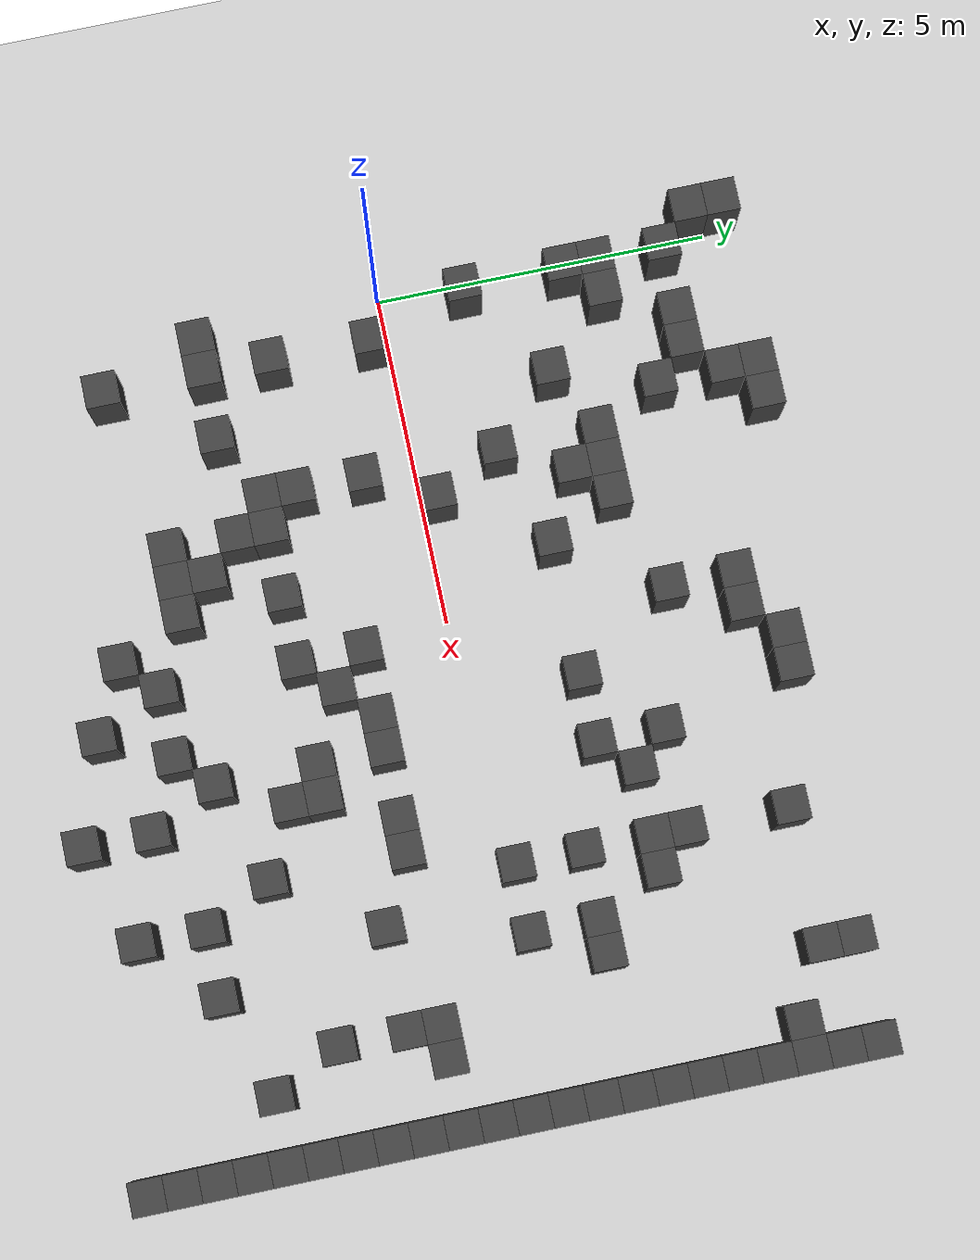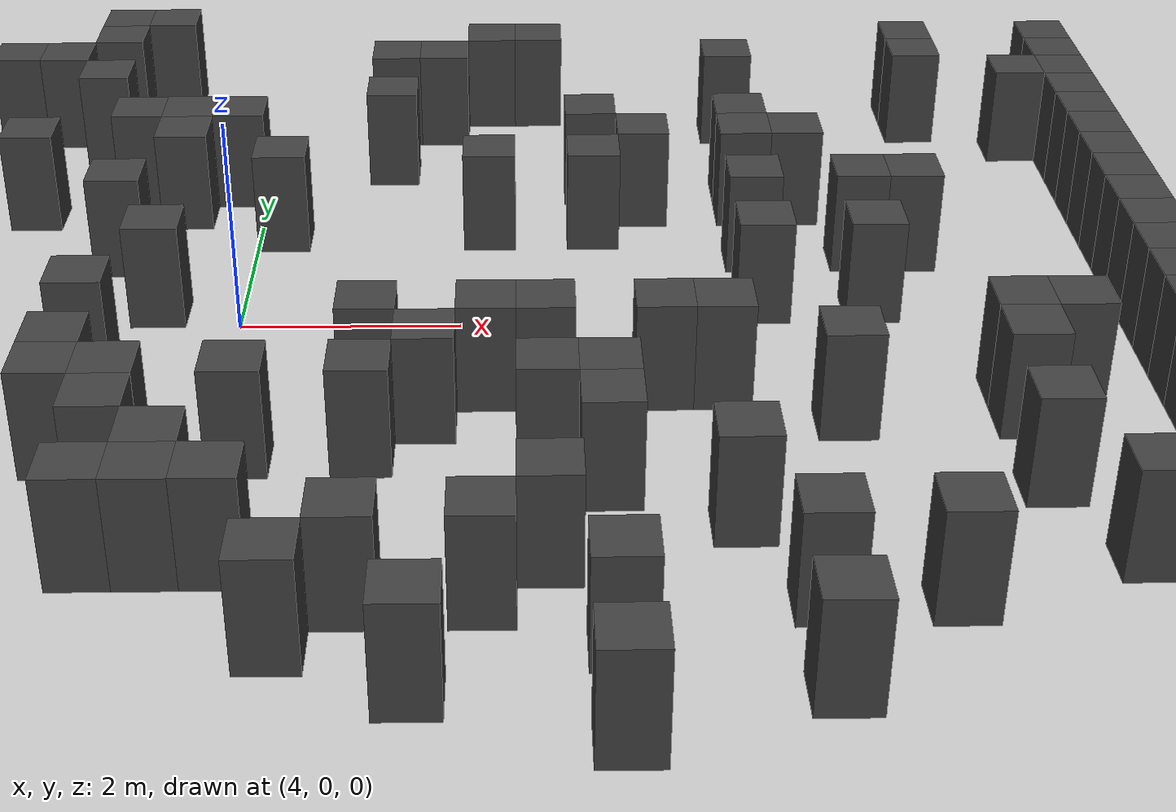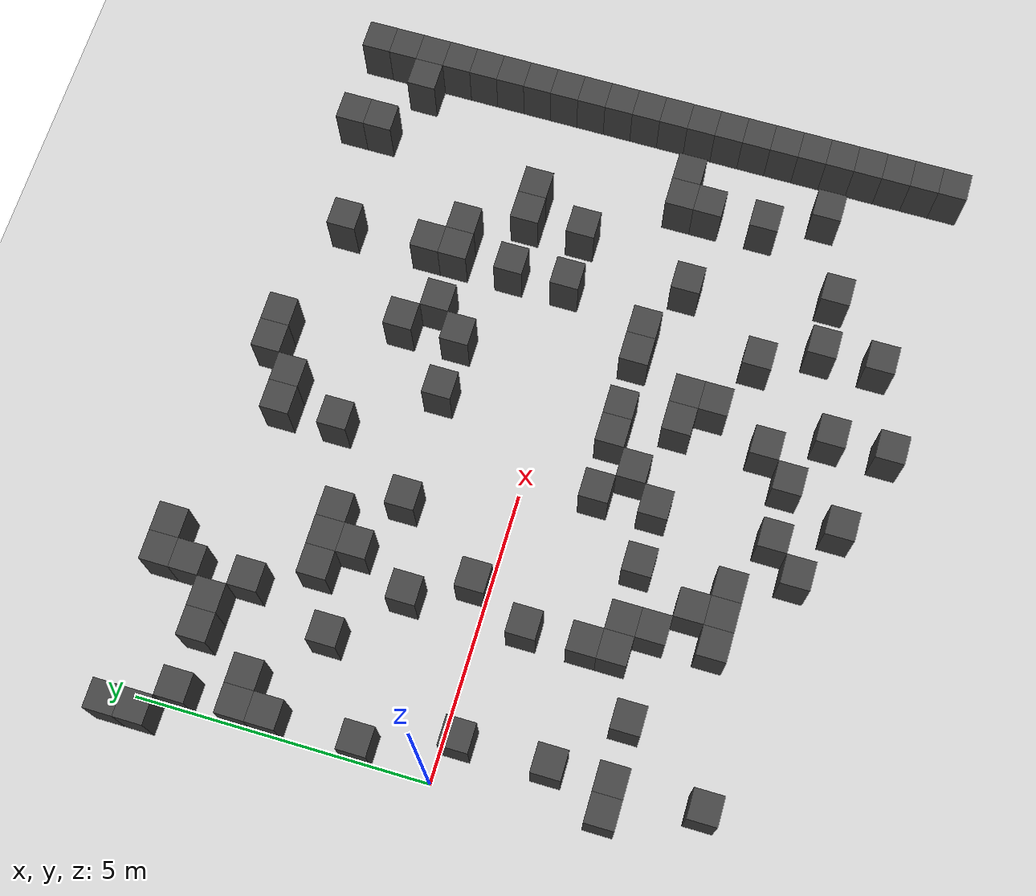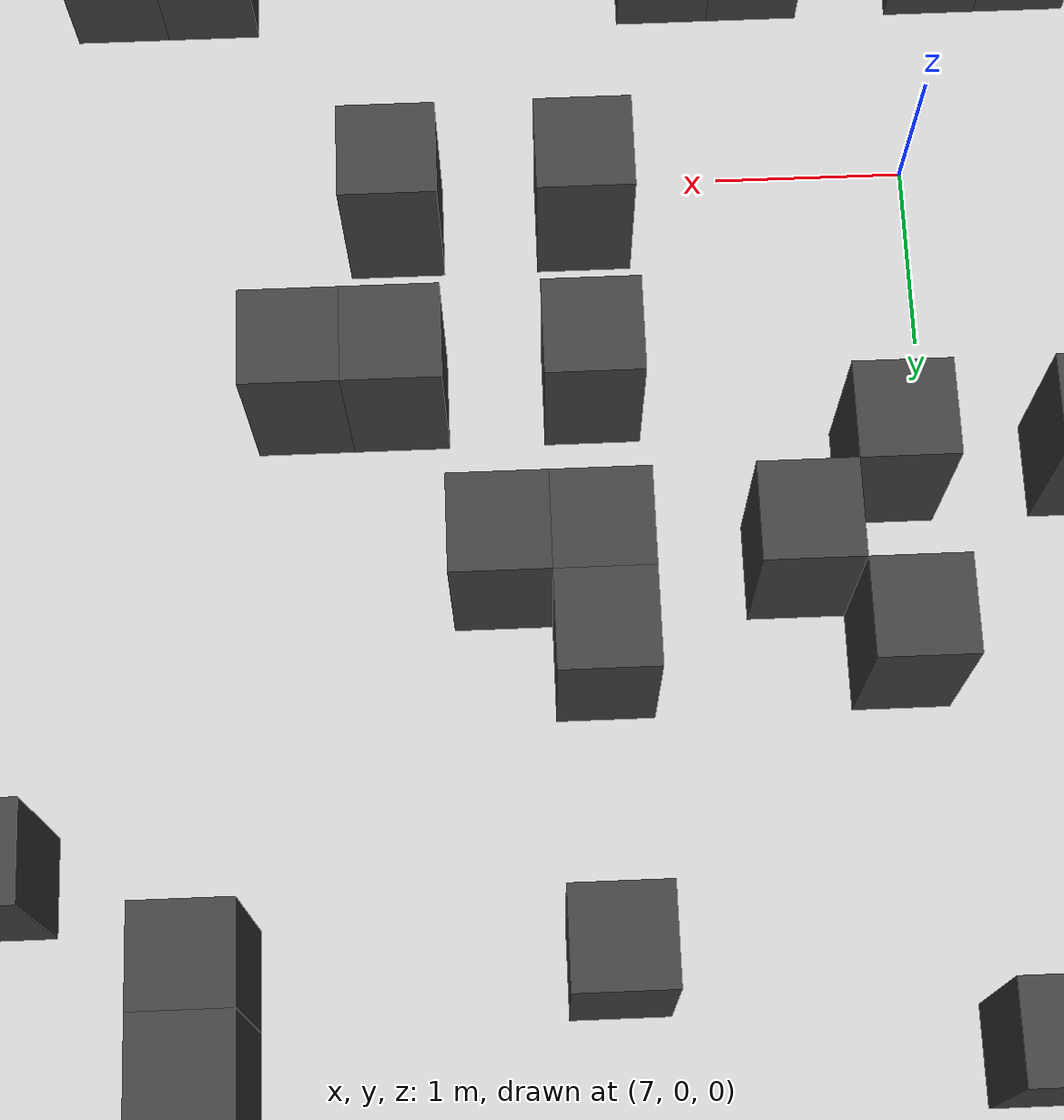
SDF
<sdf version="1.7">
 <world name="map_3955">
  <model name="ground_plane">
   <static>true</static>
   <link name="link">
    <collision name="collision">
     <geometry><plane><normal>0 0 1</normal><size>200 200</size></plane></geometry>
    </collision>
    <visual name="visual">
     <geometry><plane><normal>0 0 1</normal><size>200 200</size></plane></geometry>
     <material><ambient>0.8 0.8 0.8 1</ambient><diffuse>0.8 0.8 0.8 1</diffuse></material>
    </visual>
   </link>
  </model>
  <model name="maze_environment">
   <static>true</static>
   <link name="wall_205">
    <pose>-0.250 5.250 0.500 0 0 0</pose>
    <collision name="col"><geometry><box><size>0.5 0.5 1.0</size></box></geometry></collision>
    <visual name="vis">
     <geometry><box><size>0.5 0.5 1.0</size></box></geometry>
     <material><ambient>0.15 0.15 0.15 1</ambient><diffuse>0.25 0.25 0.25 1</diffuse></material>
    </visual>
   </link>
   <link name="wall_206">
    <pose>2.250 5.250 0.500 0 0 0</pose>
    <collision name="col"><geometry><box><size>0.5 0.5 1.0</size></box></geometry></collision>
    <visual name="vis">
     <geometry><box><size>0.5 0.5 1.0</size></box></geometry>
     <material><ambient>0.15 0.15 0.15 1</ambient><diffuse>0.25 0.25 0.25 1</diffuse></material>
    </visual>
   </link>
   <link name="wall_207">
    <pose>2.750 5.250 0.500 0 0 0</pose>
    <collision name="col"><geometry><box><size>0.5 0.5 1.0</size></box></geometry></collision>
    <visual name="vis">
     <geometry><box><size>0.5 0.5 1.0</size></box></geometry>
     <material><ambient>0.15 0.15 0.15 1</ambient><diffuse>0.25 0.25 0.25 1</diffuse></material>
    </visual>
   </link>
   <link name="wall_222">
    <pose>-0.250 4.750 0.500 0 0 0</pose>
    <collision name="col"><geometry><box><size>0.5 0.5 1.0</size></box></geometry></collision>
    <visual name="vis">
     <geometry><box><size>0.5 0.5 1.0</size></box></geometry>
     <material><ambient>0.15 0.15 0.15 1</ambient><diffuse>0.25 0.25 0.25 1</diffuse></material>
    </visual>
   </link>
   <link name="wall_223">
    <pose>2.250 4.750 0.500 0 0 0</pose>
    <collision name="col"><geometry><box><size>0.5 0.5 1.0</size></box></geometry></collision>
    <visual name="vis">
     <geometry><box><size>0.5 0.5 1.0</size></box></geometry>
     <material><ambient>0.15 0.15 0.15 1</ambient><diffuse>0.25 0.25 0.25 1</diffuse></material>
    </visual>
   </link>
   <link name="wall_224">
    <pose>6.250 4.750 0.500 0 0 0</pose>
    <collision name="col"><geometry><box><size>0.5 0.5 1.0</size></box></geometry></collision>
    <visual name="vis">
     <geometry><box><size>0.5 0.5 1.0</size></box></geometry>
     <material><ambient>0.15 0.15 0.15 1</ambient><diffuse>0.25 0.25 0.25 1</diffuse></material>
    </visual>
   </link>
   <link name="wall_225">
    <pose>6.750 4.750 0.500 0 0 0</pose>
    <collision name="col"><geometry><box><size>0.5 0.5 1.0</size></box></geometry></collision>
    <visual name="vis">
     <geometry><box><size>0.5 0.5 1.0</size></box></geometry>
     <material><ambient>0.15 0.15 0.15 1</ambient><diffuse>0.25 0.25 0.25 1</diffuse></material>
    </visual>
   </link>
   <link name="wall_226">
    <pose>10.750 4.750 0.500 0 0 0</pose>
    <collision name="col"><geometry><box><size>0.5 0.5 1.0</size></box></geometry></collision>
    <visual name="vis">
     <geometry><box><size>0.5 0.5 1.0</size></box></geometry>
     <material><ambient>0.15 0.15 0.15 1</ambient><diffuse>0.25 0.25 0.25 1</diffuse></material>
    </visual>
   </link>
   <link name="wall_227">
    <pose>12.250 4.750 0.500 0 0 0</pose>
    <collision name="col"><geometry><box><size>0.5 0.5 1.0</size></box></geometry></collision>
    <visual name="vis">
     <geometry><box><size>0.5 0.5 1.0</size></box></geometry>
     <material><ambient>0.15 0.15 0.15 1</ambient><diffuse>0.25 0.25 0.25 1</diffuse></material>
    </visual>
   </link>
   <link name="wall_233">
    <pose>0.250 4.250 0.500 0 0 0</pose>
    <collision name="col"><geometry><box><size>0.5 0.5 1.0</size></box></geometry></collision>
    <visual name="vis">
     <geometry><box><size>0.5 0.5 1.0</size></box></geometry>
     <material><ambient>0.15 0.15 0.15 1</ambient><diffuse>0.25 0.25 0.25 1</diffuse></material>
    </visual>
   </link>
   <link name="wall_234">
    <pose>1.250 4.250 0.500 0 0 0</pose>
    <collision name="col"><geometry><box><size>0.5 0.5 1.0</size></box></geometry></collision>
    <visual name="vis">
     <geometry><box><size>0.5 0.5 1.0</size></box></geometry>
     <material><ambient>0.15 0.15 0.15 1</ambient><diffuse>0.25 0.25 0.25 1</diffuse></material>
    </visual>
   </link>
   <link name="wall_235">
    <pose>1.750 4.250 0.500 0 0 0</pose>
    <collision name="col"><geometry><box><size>0.5 0.5 1.0</size></box></geometry></collision>
    <visual name="vis">
     <geometry><box><size>0.5 0.5 1.0</size></box></geometry>
     <material><ambient>0.15 0.15 0.15 1</ambient><diffuse>0.25 0.25 0.25 1</diffuse></material>
    </visual>
   </link>
   <link name="wall_236">
    <pose>5.250 4.250 0.500 0 0 0</pose>
    <collision name="col"><geometry><box><size>0.5 0.5 1.0</size></box></geometry></collision>
    <visual name="vis">
     <geometry><box><size>0.5 0.5 1.0</size></box></geometry>
     <material><ambient>0.15 0.15 0.15 1</ambient><diffuse>0.25 0.25 0.25 1</diffuse></material>
    </visual>
   </link>
   <link name="wall_237">
    <pose>5.750 4.250 0.500 0 0 0</pose>
    <collision name="col"><geometry><box><size>0.5 0.5 1.0</size></box></geometry></collision>
    <visual name="vis">
     <geometry><box><size>0.5 0.5 1.0</size></box></geometry>
     <material><ambient>0.15 0.15 0.15 1</ambient><diffuse>0.25 0.25 0.25 1</diffuse></material>
    </visual>
   </link>
   <link name="wall_238">
    <pose>8.750 4.250 0.500 0 0 0</pose>
    <collision name="col"><geometry><box><size>0.5 0.5 1.0</size></box></geometry></collision>
    <visual name="vis">
     <geometry><box><size>0.5 0.5 1.0</size></box></geometry>
     <material><ambient>0.15 0.15 0.15 1</ambient><diffuse>0.25 0.25 0.25 1</diffuse></material>
    </visual>
   </link>
   <link name="wall_239">
    <pose>10.750 4.250 0.500 0 0 0</pose>
    <collision name="col"><geometry><box><size>0.5 0.5 1.0</size></box></geometry></collision>
    <visual name="vis">
     <geometry><box><size>0.5 0.5 1.0</size></box></geometry>
     <material><ambient>0.15 0.15 0.15 1</ambient><diffuse>0.25 0.25 0.25 1</diffuse></material>
    </visual>
   </link>
   <link name="wall_240">
    <pose>12.250 4.250 0.500 0 0 0</pose>
    <collision name="col"><geometry><box><size>0.5 0.5 1.0</size></box></geometry></collision>
    <visual name="vis">
     <geometry><box><size>0.5 0.5 1.0</size></box></geometry>
     <material><ambient>0.15 0.15 0.15 1</ambient><diffuse>0.25 0.25 0.25 1</diffuse></material>
    </visual>
   </link>
   <link name="wall_250">
    <pose>2.250 3.750 0.500 0 0 0</pose>
    <collision name="col"><geometry><box><size>0.5 0.5 1.0</size></box></geometry></collision>
    <visual name="vis">
     <geometry><box><size>0.5 0.5 1.0</size></box></geometry>
     <material><ambient>0.15 0.15 0.15 1</ambient><diffuse>0.25 0.25 0.25 1</diffuse></material>
    </visual>
   </link>
   <link name="wall_251">
    <pose>11.750 3.750 0.500 0 0 0</pose>
    <collision name="col"><geometry><box><size>0.5 0.5 1.0</size></box></geometry></collision>
    <visual name="vis">
     <geometry><box><size>0.5 0.5 1.0</size></box></geometry>
     <material><ambient>0.15 0.15 0.15 1</ambient><diffuse>0.25 0.25 0.25 1</diffuse></material>
    </visual>
   </link>
   <link name="wall_252">
    <pose>12.250 3.750 0.500 0 0 0</pose>
    <collision name="col"><geometry><box><size>0.5 0.5 1.0</size></box></geometry></collision>
    <visual name="vis">
     <geometry><box><size>0.5 0.5 1.0</size></box></geometry>
     <material><ambient>0.15 0.15 0.15 1</ambient><diffuse>0.25 0.25 0.25 1</diffuse></material>
    </visual>
   </link>
   <link name="wall_260">
    <pose>0.250 3.250 0.500 0 0 0</pose>
    <collision name="col"><geometry><box><size>0.5 0.5 1.0</size></box></geometry></collision>
    <visual name="vis">
     <geometry><box><size>0.5 0.5 1.0</size></box></geometry>
     <material><ambient>0.15 0.15 0.15 1</ambient><diffuse>0.25 0.25 0.25 1</diffuse></material>
    </visual>
   </link>
   <link name="wall_261">
    <pose>0.750 3.250 0.500 0 0 0</pose>
    <collision name="col"><geometry><box><size>0.5 0.5 1.0</size></box></geometry></collision>
    <visual name="vis">
     <geometry><box><size>0.5 0.5 1.0</size></box></geometry>
     <material><ambient>0.15 0.15 0.15 1</ambient><diffuse>0.25 0.25 0.25 1</diffuse></material>
    </visual>
   </link>
   <link name="wall_262">
    <pose>5.250 3.250 0.500 0 0 0</pose>
    <collision name="col"><geometry><box><size>0.5 0.5 1.0</size></box></geometry></collision>
    <visual name="vis">
     <geometry><box><size>0.5 0.5 1.0</size></box></geometry>
     <material><ambient>0.15 0.15 0.15 1</ambient><diffuse>0.25 0.25 0.25 1</diffuse></material>
    </visual>
   </link>
   <link name="wall_263">
    <pose>12.250 3.250 0.500 0 0 0</pose>
    <collision name="col"><geometry><box><size>0.5 0.5 1.0</size></box></geometry></collision>
    <visual name="vis">
     <geometry><box><size>0.5 0.5 1.0</size></box></geometry>
     <material><ambient>0.15 0.15 0.15 1</ambient><diffuse>0.25 0.25 0.25 1</diffuse></material>
    </visual>
   </link>
   <link name="wall_272">
    <pose>0.250 2.750 0.500 0 0 0</pose>
    <collision name="col"><geometry><box><size>0.5 0.5 1.0</size></box></geometry></collision>
    <visual name="vis">
     <geometry><box><size>0.5 0.5 1.0</size></box></geometry>
     <material><ambient>0.15 0.15 0.15 1</ambient><diffuse>0.25 0.25 0.25 1</diffuse></material>
    </visual>
   </link>
   <link name="wall_273">
    <pose>2.750 2.750 0.500 0 0 0</pose>
    <collision name="col"><geometry><box><size>0.5 0.5 1.0</size></box></geometry></collision>
    <visual name="vis">
     <geometry><box><size>0.5 0.5 1.0</size></box></geometry>
     <material><ambient>0.15 0.15 0.15 1</ambient><diffuse>0.25 0.25 0.25 1</diffuse></material>
    </visual>
   </link>
   <link name="wall_274">
    <pose>3.250 2.750 0.500 0 0 0</pose>
    <collision name="col"><geometry><box><size>0.5 0.5 1.0</size></box></geometry></collision>
    <visual name="vis">
     <geometry><box><size>0.5 0.5 1.0</size></box></geometry>
     <material><ambient>0.15 0.15 0.15 1</ambient><diffuse>0.25 0.25 0.25 1</diffuse></material>
    </visual>
   </link>
   <link name="wall_275">
    <pose>3.750 2.750 0.500 0 0 0</pose>
    <collision name="col"><geometry><box><size>0.5 0.5 1.0</size></box></geometry></collision>
    <visual name="vis">
     <geometry><box><size>0.5 0.5 1.0</size></box></geometry>
     <material><ambient>0.15 0.15 0.15 1</ambient><diffuse>0.25 0.25 0.25 1</diffuse></material>
    </visual>
   </link>
   <link name="wall_276">
    <pose>7.250 2.750 0.500 0 0 0</pose>
    <collision name="col"><geometry><box><size>0.5 0.5 1.0</size></box></geometry></collision>
    <visual name="vis">
     <geometry><box><size>0.5 0.5 1.0</size></box></geometry>
     <material><ambient>0.15 0.15 0.15 1</ambient><diffuse>0.25 0.25 0.25 1</diffuse></material>
    </visual>
   </link>
   <link name="wall_277">
    <pose>8.750 2.750 0.500 0 0 0</pose>
    <collision name="col"><geometry><box><size>0.5 0.5 1.0</size></box></geometry></collision>
    <visual name="vis">
     <geometry><box><size>0.5 0.5 1.0</size></box></geometry>
     <material><ambient>0.15 0.15 0.15 1</ambient><diffuse>0.25 0.25 0.25 1</diffuse></material>
    </visual>
   </link>
   <link name="wall_278">
    <pose>12.250 2.750 0.500 0 0 0</pose>
    <collision name="col"><geometry><box><size>0.5 0.5 1.0</size></box></geometry></collision>
    <visual name="vis">
     <geometry><box><size>0.5 0.5 1.0</size></box></geometry>
     <material><ambient>0.15 0.15 0.15 1</ambient><diffuse>0.25 0.25 0.25 1</diffuse></material>
    </visual>
   </link>
   <link name="wall_284">
    <pose>1.750 2.250 0.500 0 0 0</pose>
    <collision name="col"><geometry><box><size>0.5 0.5 1.0</size></box></geometry></collision>
    <visual name="vis">
     <geometry><box><size>0.5 0.5 1.0</size></box></geometry>
     <material><ambient>0.15 0.15 0.15 1</ambient><diffuse>0.25 0.25 0.25 1</diffuse></material>
    </visual>
   </link>
   <link name="wall_285">
    <pose>3.250 2.250 0.500 0 0 0</pose>
    <collision name="col"><geometry><box><size>0.5 0.5 1.0</size></box></geometry></collision>
    <visual name="vis">
     <geometry><box><size>0.5 0.5 1.0</size></box></geometry>
     <material><ambient>0.15 0.15 0.15 1</ambient><diffuse>0.25 0.25 0.25 1</diffuse></material>
    </visual>
   </link>
   <link name="wall_286">
    <pose>7.750 2.250 0.500 0 0 0</pose>
    <collision name="col"><geometry><box><size>0.5 0.5 1.0</size></box></geometry></collision>
    <visual name="vis">
     <geometry><box><size>0.5 0.5 1.0</size></box></geometry>
     <material><ambient>0.15 0.15 0.15 1</ambient><diffuse>0.25 0.25 0.25 1</diffuse></material>
    </visual>
   </link>
   <link name="wall_287">
    <pose>8.750 2.250 0.500 0 0 0</pose>
    <collision name="col"><geometry><box><size>0.5 0.5 1.0</size></box></geometry></collision>
    <visual name="vis">
     <geometry><box><size>0.5 0.5 1.0</size></box></geometry>
     <material><ambient>0.15 0.15 0.15 1</ambient><diffuse>0.25 0.25 0.25 1</diffuse></material>
    </visual>
   </link>
   <link name="wall_288">
    <pose>9.250 2.250 0.500 0 0 0</pose>
    <collision name="col"><geometry><box><size>0.5 0.5 1.0</size></box></geometry></collision>
    <visual name="vis">
     <geometry><box><size>0.5 0.5 1.0</size></box></geometry>
     <material><ambient>0.15 0.15 0.15 1</ambient><diffuse>0.25 0.25 0.25 1</diffuse></material>
    </visual>
   </link>
   <link name="wall_289">
    <pose>12.250 2.250 0.500 0 0 0</pose>
    <collision name="col"><geometry><box><size>0.5 0.5 1.0</size></box></geometry></collision>
    <visual name="vis">
     <geometry><box><size>0.5 0.5 1.0</size></box></geometry>
     <material><ambient>0.15 0.15 0.15 1</ambient><diffuse>0.25 0.25 0.25 1</diffuse></material>
    </visual>
   </link>
   <link name="wall_293">
    <pose>4.250 1.750 0.500 0 0 0</pose>
    <collision name="col"><geometry><box><size>0.5 0.5 1.0</size></box></geometry></collision>
    <visual name="vis">
     <geometry><box><size>0.5 0.5 1.0</size></box></geometry>
     <material><ambient>0.15 0.15 0.15 1</ambient><diffuse>0.25 0.25 0.25 1</diffuse></material>
    </visual>
   </link>
   <link name="wall_294">
    <pose>6.250 1.750 0.500 0 0 0</pose>
    <collision name="col"><geometry><box><size>0.5 0.5 1.0</size></box></geometry></collision>
    <visual name="vis">
     <geometry><box><size>0.5 0.5 1.0</size></box></geometry>
     <material><ambient>0.15 0.15 0.15 1</ambient><diffuse>0.25 0.25 0.25 1</diffuse></material>
    </visual>
   </link>
   <link name="wall_295">
    <pose>7.250 1.750 0.500 0 0 0</pose>
    <collision name="col"><geometry><box><size>0.5 0.5 1.0</size></box></geometry></collision>
    <visual name="vis">
     <geometry><box><size>0.5 0.5 1.0</size></box></geometry>
     <material><ambient>0.15 0.15 0.15 1</ambient><diffuse>0.25 0.25 0.25 1</diffuse></material>
    </visual>
   </link>
   <link name="wall_296">
    <pose>12.250 1.750 0.500 0 0 0</pose>
    <collision name="col"><geometry><box><size>0.5 0.5 1.0</size></box></geometry></collision>
    <visual name="vis">
     <geometry><box><size>0.5 0.5 1.0</size></box></geometry>
     <material><ambient>0.15 0.15 0.15 1</ambient><diffuse>0.25 0.25 0.25 1</diffuse></material>
    </visual>
   </link>
   <link name="wall_300">
    <pose>0.250 1.250 0.500 0 0 0</pose>
    <collision name="col"><geometry><box><size>0.5 0.5 1.0</size></box></geometry></collision>
    <visual name="vis">
     <geometry><box><size>0.5 0.5 1.0</size></box></geometry>
     <material><ambient>0.15 0.15 0.15 1</ambient><diffuse>0.25 0.25 0.25 1</diffuse></material>
    </visual>
   </link>
   <link name="wall_301">
    <pose>2.750 1.250 0.500 0 0 0</pose>
    <collision name="col"><geometry><box><size>0.5 0.5 1.0</size></box></geometry></collision>
    <visual name="vis">
     <geometry><box><size>0.5 0.5 1.0</size></box></geometry>
     <material><ambient>0.15 0.15 0.15 1</ambient><diffuse>0.25 0.25 0.25 1</diffuse></material>
    </visual>
   </link>
   <link name="wall_302">
    <pose>8.750 1.250 0.500 0 0 0</pose>
    <collision name="col"><geometry><box><size>0.5 0.5 1.0</size></box></geometry></collision>
    <visual name="vis">
     <geometry><box><size>0.5 0.5 1.0</size></box></geometry>
     <material><ambient>0.15 0.15 0.15 1</ambient><diffuse>0.25 0.25 0.25 1</diffuse></material>
    </visual>
   </link>
   <link name="wall_303">
    <pose>9.750 1.250 0.500 0 0 0</pose>
    <collision name="col"><geometry><box><size>0.5 0.5 1.0</size></box></geometry></collision>
    <visual name="vis">
     <geometry><box><size>0.5 0.5 1.0</size></box></geometry>
     <material><ambient>0.15 0.15 0.15 1</ambient><diffuse>0.25 0.25 0.25 1</diffuse></material>
    </visual>
   </link>
   <link name="wall_304">
    <pose>10.250 1.250 0.500 0 0 0</pose>
    <collision name="col"><geometry><box><size>0.5 0.5 1.0</size></box></geometry></collision>
    <visual name="vis">
     <geometry><box><size>0.5 0.5 1.0</size></box></geometry>
     <material><ambient>0.15 0.15 0.15 1</ambient><diffuse>0.25 0.25 0.25 1</diffuse></material>
    </visual>
   </link>
   <link name="wall_305">
    <pose>12.250 1.250 0.500 0 0 0</pose>
    <collision name="col"><geometry><box><size>0.5 0.5 1.0</size></box></geometry></collision>
    <visual name="vis">
     <geometry><box><size>0.5 0.5 1.0</size></box></geometry>
     <material><ambient>0.15 0.15 0.15 1</ambient><diffuse>0.25 0.25 0.25 1</diffuse></material>
    </visual>
   </link>
   <link name="wall_315">
    <pose>12.250 0.750 0.500 0 0 0</pose>
    <collision name="col"><geometry><box><size>0.5 0.5 1.0</size></box></geometry></collision>
    <visual name="vis">
     <geometry><box><size>0.5 0.5 1.0</size></box></geometry>
     <material><ambient>0.15 0.15 0.15 1</ambient><diffuse>0.25 0.25 0.25 1</diffuse></material>
    </visual>
   </link>
   <link name="wall_321">
    <pose>3.250 0.250 0.500 0 0 0</pose>
    <collision name="col"><geometry><box><size>0.5 0.5 1.0</size></box></geometry></collision>
    <visual name="vis">
     <geometry><box><size>0.5 0.5 1.0</size></box></geometry>
     <material><ambient>0.15 0.15 0.15 1</ambient><diffuse>0.25 0.25 0.25 1</diffuse></material>
    </visual>
   </link>
   <link name="wall_322">
    <pose>8.750 0.250 0.500 0 0 0</pose>
    <collision name="col"><geometry><box><size>0.5 0.5 1.0</size></box></geometry></collision>
    <visual name="vis">
     <geometry><box><size>0.5 0.5 1.0</size></box></geometry>
     <material><ambient>0.15 0.15 0.15 1</ambient><diffuse>0.25 0.25 0.25 1</diffuse></material>
    </visual>
   </link>
   <link name="wall_323">
    <pose>9.750 0.250 0.500 0 0 0</pose>
    <collision name="col"><geometry><box><size>0.5 0.5 1.0</size></box></geometry></collision>
    <visual name="vis">
     <geometry><box><size>0.5 0.5 1.0</size></box></geometry>
     <material><ambient>0.15 0.15 0.15 1</ambient><diffuse>0.25 0.25 0.25 1</diffuse></material>
    </visual>
   </link>
   <link name="wall_324">
    <pose>12.250 0.250 0.500 0 0 0</pose>
    <collision name="col"><geometry><box><size>0.5 0.5 1.0</size></box></geometry></collision>
    <visual name="vis">
     <geometry><box><size>0.5 0.5 1.0</size></box></geometry>
     <material><ambient>0.15 0.15 0.15 1</ambient><diffuse>0.25 0.25 0.25 1</diffuse></material>
    </visual>
   </link>
   <link name="wall_331">
    <pose>0.750 -0.250 0.500 0 0 0</pose>
    <collision name="col"><geometry><box><size>0.5 0.5 1.0</size></box></geometry></collision>
    <visual name="vis">
     <geometry><box><size>0.5 0.5 1.0</size></box></geometry>
     <material><ambient>0.15 0.15 0.15 1</ambient><diffuse>0.25 0.25 0.25 1</diffuse></material>
    </visual>
   </link>
   <link name="wall_332">
    <pose>12.250 -0.250 0.500 0 0 0</pose>
    <collision name="col"><geometry><box><size>0.5 0.5 1.0</size></box></geometry></collision>
    <visual name="vis">
     <geometry><box><size>0.5 0.5 1.0</size></box></geometry>
     <material><ambient>0.15 0.15 0.15 1</ambient><diffuse>0.25 0.25 0.25 1</diffuse></material>
    </visual>
   </link>
   <link name="wall_337">
    <pose>2.750 -0.750 0.500 0 0 0</pose>
    <collision name="col"><geometry><box><size>0.5 0.5 1.0</size></box></geometry></collision>
    <visual name="vis">
     <geometry><box><size>0.5 0.5 1.0</size></box></geometry>
     <material><ambient>0.15 0.15 0.15 1</ambient><diffuse>0.25 0.25 0.25 1</diffuse></material>
    </visual>
   </link>
   <link name="wall_338">
    <pose>12.250 -0.750 0.500 0 0 0</pose>
    <collision name="col"><geometry><box><size>0.5 0.5 1.0</size></box></geometry></collision>
    <visual name="vis">
     <geometry><box><size>0.5 0.5 1.0</size></box></geometry>
     <material><ambient>0.15 0.15 0.15 1</ambient><diffuse>0.25 0.25 0.25 1</diffuse></material>
    </visual>
   </link>
   <link name="wall_342">
    <pose>5.250 -1.250 0.500 0 0 0</pose>
    <collision name="col"><geometry><box><size>0.5 0.5 1.0</size></box></geometry></collision>
    <visual name="vis">
     <geometry><box><size>0.5 0.5 1.0</size></box></geometry>
     <material><ambient>0.15 0.15 0.15 1</ambient><diffuse>0.25 0.25 0.25 1</diffuse></material>
    </visual>
   </link>
   <link name="wall_343">
    <pose>6.250 -1.250 0.500 0 0 0</pose>
    <collision name="col"><geometry><box><size>0.5 0.5 1.0</size></box></geometry></collision>
    <visual name="vis">
     <geometry><box><size>0.5 0.5 1.0</size></box></geometry>
     <material><ambient>0.15 0.15 0.15 1</ambient><diffuse>0.25 0.25 0.25 1</diffuse></material>
    </visual>
   </link>
   <link name="wall_344">
    <pose>6.750 -1.250 0.500 0 0 0</pose>
    <collision name="col"><geometry><box><size>0.5 0.5 1.0</size></box></geometry></collision>
    <visual name="vis">
     <geometry><box><size>0.5 0.5 1.0</size></box></geometry>
     <material><ambient>0.15 0.15 0.15 1</ambient><diffuse>0.25 0.25 0.25 1</diffuse></material>
    </visual>
   </link>
   <link name="wall_345">
    <pose>7.750 -1.250 0.500 0 0 0</pose>
    <collision name="col"><geometry><box><size>0.5 0.5 1.0</size></box></geometry></collision>
    <visual name="vis">
     <geometry><box><size>0.5 0.5 1.0</size></box></geometry>
     <material><ambient>0.15 0.15 0.15 1</ambient><diffuse>0.25 0.25 0.25 1</diffuse></material>
    </visual>
   </link>
   <link name="wall_346">
    <pose>8.250 -1.250 0.500 0 0 0</pose>
    <collision name="col"><geometry><box><size>0.5 0.5 1.0</size></box></geometry></collision>
    <visual name="vis">
     <geometry><box><size>0.5 0.5 1.0</size></box></geometry>
     <material><ambient>0.15 0.15 0.15 1</ambient><diffuse>0.25 0.25 0.25 1</diffuse></material>
    </visual>
   </link>
   <link name="wall_347">
    <pose>10.750 -1.250 0.500 0 0 0</pose>
    <collision name="col"><geometry><box><size>0.5 0.5 1.0</size></box></geometry></collision>
    <visual name="vis">
     <geometry><box><size>0.5 0.5 1.0</size></box></geometry>
     <material><ambient>0.15 0.15 0.15 1</ambient><diffuse>0.25 0.25 0.25 1</diffuse></material>
    </visual>
   </link>
   <link name="wall_348">
    <pose>11.250 -1.250 0.500 0 0 0</pose>
    <collision name="col"><geometry><box><size>0.5 0.5 1.0</size></box></geometry></collision>
    <visual name="vis">
     <geometry><box><size>0.5 0.5 1.0</size></box></geometry>
     <material><ambient>0.15 0.15 0.15 1</ambient><diffuse>0.25 0.25 0.25 1</diffuse></material>
    </visual>
   </link>
   <link name="wall_349">
    <pose>12.250 -1.250 0.500 0 0 0</pose>
    <collision name="col"><geometry><box><size>0.5 0.5 1.0</size></box></geometry></collision>
    <visual name="vis">
     <geometry><box><size>0.5 0.5 1.0</size></box></geometry>
     <material><ambient>0.15 0.15 0.15 1</ambient><diffuse>0.25 0.25 0.25 1</diffuse></material>
    </visual>
   </link>
   <link name="wall_356">
    <pose>0.750 -1.750 0.500 0 0 0</pose>
    <collision name="col"><geometry><box><size>0.5 0.5 1.0</size></box></geometry></collision>
    <visual name="vis">
     <geometry><box><size>0.5 0.5 1.0</size></box></geometry>
     <material><ambient>0.15 0.15 0.15 1</ambient><diffuse>0.25 0.25 0.25 1</diffuse></material>
    </visual>
   </link>
   <link name="wall_357">
    <pose>2.750 -1.750 0.500 0 0 0</pose>
    <collision name="col"><geometry><box><size>0.5 0.5 1.0</size></box></geometry></collision>
    <visual name="vis">
     <geometry><box><size>0.5 0.5 1.0</size></box></geometry>
     <material><ambient>0.15 0.15 0.15 1</ambient><diffuse>0.25 0.25 0.25 1</diffuse></material>
    </visual>
   </link>
   <link name="wall_358">
    <pose>5.750 -1.750 0.500 0 0 0</pose>
    <collision name="col"><geometry><box><size>0.5 0.5 1.0</size></box></geometry></collision>
    <visual name="vis">
     <geometry><box><size>0.5 0.5 1.0</size></box></geometry>
     <material><ambient>0.15 0.15 0.15 1</ambient><diffuse>0.25 0.25 0.25 1</diffuse></material>
    </visual>
   </link>
   <link name="wall_359">
    <pose>9.250 -1.750 0.500 0 0 0</pose>
    <collision name="col"><geometry><box><size>0.5 0.5 1.0</size></box></geometry></collision>
    <visual name="vis">
     <geometry><box><size>0.5 0.5 1.0</size></box></geometry>
     <material><ambient>0.15 0.15 0.15 1</ambient><diffuse>0.25 0.25 0.25 1</diffuse></material>
    </visual>
   </link>
   <link name="wall_360">
    <pose>10.750 -1.750 0.500 0 0 0</pose>
    <collision name="col"><geometry><box><size>0.5 0.5 1.0</size></box></geometry></collision>
    <visual name="vis">
     <geometry><box><size>0.5 0.5 1.0</size></box></geometry>
     <material><ambient>0.15 0.15 0.15 1</ambient><diffuse>0.25 0.25 0.25 1</diffuse></material>
    </visual>
   </link>
   <link name="wall_361">
    <pose>12.250 -1.750 0.500 0 0 0</pose>
    <collision name="col"><geometry><box><size>0.5 0.5 1.0</size></box></geometry></collision>
    <visual name="vis">
     <geometry><box><size>0.5 0.5 1.0</size></box></geometry>
     <material><ambient>0.15 0.15 0.15 1</ambient><diffuse>0.25 0.25 0.25 1</diffuse></material>
    </visual>
   </link>
   <link name="wall_365">
    <pose>2.750 -2.250 0.500 0 0 0</pose>
    <collision name="col"><geometry><box><size>0.5 0.5 1.0</size></box></geometry></collision>
    <visual name="vis">
     <geometry><box><size>0.5 0.5 1.0</size></box></geometry>
     <material><ambient>0.15 0.15 0.15 1</ambient><diffuse>0.25 0.25 0.25 1</diffuse></material>
    </visual>
   </link>
   <link name="wall_366">
    <pose>3.250 -2.250 0.500 0 0 0</pose>
    <collision name="col"><geometry><box><size>0.5 0.5 1.0</size></box></geometry></collision>
    <visual name="vis">
     <geometry><box><size>0.5 0.5 1.0</size></box></geometry>
     <material><ambient>0.15 0.15 0.15 1</ambient><diffuse>0.25 0.25 0.25 1</diffuse></material>
    </visual>
   </link>
   <link name="wall_367">
    <pose>4.250 -2.250 0.500 0 0 0</pose>
    <collision name="col"><geometry><box><size>0.5 0.5 1.0</size></box></geometry></collision>
    <visual name="vis">
     <geometry><box><size>0.5 0.5 1.0</size></box></geometry>
     <material><ambient>0.15 0.15 0.15 1</ambient><diffuse>0.25 0.25 0.25 1</diffuse></material>
    </visual>
   </link>
   <link name="wall_368">
    <pose>5.250 -2.250 0.500 0 0 0</pose>
    <collision name="col"><geometry><box><size>0.5 0.5 1.0</size></box></geometry></collision>
    <visual name="vis">
     <geometry><box><size>0.5 0.5 1.0</size></box></geometry>
     <material><ambient>0.15 0.15 0.15 1</ambient><diffuse>0.25 0.25 0.25 1</diffuse></material>
    </visual>
   </link>
   <link name="wall_369">
    <pose>6.750 -2.250 0.500 0 0 0</pose>
    <collision name="col"><geometry><box><size>0.5 0.5 1.0</size></box></geometry></collision>
    <visual name="vis">
     <geometry><box><size>0.5 0.5 1.0</size></box></geometry>
     <material><ambient>0.15 0.15 0.15 1</ambient><diffuse>0.25 0.25 0.25 1</diffuse></material>
    </visual>
   </link>
   <link name="wall_370">
    <pose>7.250 -2.250 0.500 0 0 0</pose>
    <collision name="col"><geometry><box><size>0.5 0.5 1.0</size></box></geometry></collision>
    <visual name="vis">
     <geometry><box><size>0.5 0.5 1.0</size></box></geometry>
     <material><ambient>0.15 0.15 0.15 1</ambient><diffuse>0.25 0.25 0.25 1</diffuse></material>
    </visual>
   </link>
   <link name="wall_371">
    <pose>12.250 -2.250 0.500 0 0 0</pose>
    <collision name="col"><geometry><box><size>0.5 0.5 1.0</size></box></geometry></collision>
    <visual name="vis">
     <geometry><box><size>0.5 0.5 1.0</size></box></geometry>
     <material><ambient>0.15 0.15 0.15 1</ambient><diffuse>0.25 0.25 0.25 1</diffuse></material>
    </visual>
   </link>
   <link name="wall_376">
    <pose>0.250 -2.750 0.500 0 0 0</pose>
    <collision name="col"><geometry><box><size>0.5 0.5 1.0</size></box></geometry></collision>
    <visual name="vis">
     <geometry><box><size>0.5 0.5 1.0</size></box></geometry>
     <material><ambient>0.15 0.15 0.15 1</ambient><diffuse>0.25 0.25 0.25 1</diffuse></material>
    </visual>
   </link>
   <link name="wall_377">
    <pose>0.750 -2.750 0.500 0 0 0</pose>
    <collision name="col"><geometry><box><size>0.5 0.5 1.0</size></box></geometry></collision>
    <visual name="vis">
     <geometry><box><size>0.5 0.5 1.0</size></box></geometry>
     <material><ambient>0.15 0.15 0.15 1</ambient><diffuse>0.25 0.25 0.25 1</diffuse></material>
    </visual>
   </link>
   <link name="wall_378">
    <pose>1.750 -2.750 0.500 0 0 0</pose>
    <collision name="col"><geometry><box><size>0.5 0.5 1.0</size></box></geometry></collision>
    <visual name="vis">
     <geometry><box><size>0.5 0.5 1.0</size></box></geometry>
     <material><ambient>0.15 0.15 0.15 1</ambient><diffuse>0.25 0.25 0.25 1</diffuse></material>
    </visual>
   </link>
   <link name="wall_379">
    <pose>3.250 -2.750 0.500 0 0 0</pose>
    <collision name="col"><geometry><box><size>0.5 0.5 1.0</size></box></geometry></collision>
    <visual name="vis">
     <geometry><box><size>0.5 0.5 1.0</size></box></geometry>
     <material><ambient>0.15 0.15 0.15 1</ambient><diffuse>0.25 0.25 0.25 1</diffuse></material>
    </visual>
   </link>
   <link name="wall_380">
    <pose>7.250 -2.750 0.500 0 0 0</pose>
    <collision name="col"><geometry><box><size>0.5 0.5 1.0</size></box></geometry></collision>
    <visual name="vis">
     <geometry><box><size>0.5 0.5 1.0</size></box></geometry>
     <material><ambient>0.15 0.15 0.15 1</ambient><diffuse>0.25 0.25 0.25 1</diffuse></material>
    </visual>
   </link>
   <link name="wall_381">
    <pose>10.750 -2.750 0.500 0 0 0</pose>
    <collision name="col"><geometry><box><size>0.5 0.5 1.0</size></box></geometry></collision>
    <visual name="vis">
     <geometry><box><size>0.5 0.5 1.0</size></box></geometry>
     <material><ambient>0.15 0.15 0.15 1</ambient><diffuse>0.25 0.25 0.25 1</diffuse></material>
    </visual>
   </link>
   <link name="wall_382">
    <pose>12.250 -2.750 0.500 0 0 0</pose>
    <collision name="col"><geometry><box><size>0.5 0.5 1.0</size></box></geometry></collision>
    <visual name="vis">
     <geometry><box><size>0.5 0.5 1.0</size></box></geometry>
     <material><ambient>0.15 0.15 0.15 1</ambient><diffuse>0.25 0.25 0.25 1</diffuse></material>
    </visual>
   </link>
   <link name="wall_389">
    <pose>3.750 -3.250 0.500 0 0 0</pose>
    <collision name="col"><geometry><box><size>0.5 0.5 1.0</size></box></geometry></collision>
    <visual name="vis">
     <geometry><box><size>0.5 0.5 1.0</size></box></geometry>
     <material><ambient>0.15 0.15 0.15 1</ambient><diffuse>0.25 0.25 0.25 1</diffuse></material>
    </visual>
   </link>
   <link name="wall_390">
    <pose>8.250 -3.250 0.500 0 0 0</pose>
    <collision name="col"><geometry><box><size>0.5 0.5 1.0</size></box></geometry></collision>
    <visual name="vis">
     <geometry><box><size>0.5 0.5 1.0</size></box></geometry>
     <material><ambient>0.15 0.15 0.15 1</ambient><diffuse>0.25 0.25 0.25 1</diffuse></material>
    </visual>
   </link>
   <link name="wall_391">
    <pose>12.250 -3.250 0.500 0 0 0</pose>
    <collision name="col"><geometry><box><size>0.5 0.5 1.0</size></box></geometry></collision>
    <visual name="vis">
     <geometry><box><size>0.5 0.5 1.0</size></box></geometry>
     <material><ambient>0.15 0.15 0.15 1</ambient><diffuse>0.25 0.25 0.25 1</diffuse></material>
    </visual>
   </link>
   <link name="wall_398">
    <pose>3.250 -3.750 0.500 0 0 0</pose>
    <collision name="col"><geometry><box><size>0.5 0.5 1.0</size></box></geometry></collision>
    <visual name="vis">
     <geometry><box><size>0.5 0.5 1.0</size></box></geometry>
     <material><ambient>0.15 0.15 0.15 1</ambient><diffuse>0.25 0.25 0.25 1</diffuse></material>
    </visual>
   </link>
   <link name="wall_399">
    <pose>3.750 -3.750 0.500 0 0 0</pose>
    <collision name="col"><geometry><box><size>0.5 0.5 1.0</size></box></geometry></collision>
    <visual name="vis">
     <geometry><box><size>0.5 0.5 1.0</size></box></geometry>
     <material><ambient>0.15 0.15 0.15 1</ambient><diffuse>0.25 0.25 0.25 1</diffuse></material>
    </visual>
   </link>
   <link name="wall_400">
    <pose>4.250 -3.750 0.500 0 0 0</pose>
    <collision name="col"><geometry><box><size>0.5 0.5 1.0</size></box></geometry></collision>
    <visual name="vis">
     <geometry><box><size>0.5 0.5 1.0</size></box></geometry>
     <material><ambient>0.15 0.15 0.15 1</ambient><diffuse>0.25 0.25 0.25 1</diffuse></material>
    </visual>
   </link>
   <link name="wall_401">
    <pose>6.750 -3.750 0.500 0 0 0</pose>
    <collision name="col"><geometry><box><size>0.5 0.5 1.0</size></box></geometry></collision>
    <visual name="vis">
     <geometry><box><size>0.5 0.5 1.0</size></box></geometry>
     <material><ambient>0.15 0.15 0.15 1</ambient><diffuse>0.25 0.25 0.25 1</diffuse></material>
    </visual>
   </link>
   <link name="wall_402">
    <pose>11.250 -3.750 0.500 0 0 0</pose>
    <collision name="col"><geometry><box><size>0.5 0.5 1.0</size></box></geometry></collision>
    <visual name="vis">
     <geometry><box><size>0.5 0.5 1.0</size></box></geometry>
     <material><ambient>0.15 0.15 0.15 1</ambient><diffuse>0.25 0.25 0.25 1</diffuse></material>
    </visual>
   </link>
   <link name="wall_403">
    <pose>12.250 -3.750 0.500 0 0 0</pose>
    <collision name="col"><geometry><box><size>0.5 0.5 1.0</size></box></geometry></collision>
    <visual name="vis">
     <geometry><box><size>0.5 0.5 1.0</size></box></geometry>
     <material><ambient>0.15 0.15 0.15 1</ambient><diffuse>0.25 0.25 0.25 1</diffuse></material>
    </visual>
   </link>
   <link name="wall_409">
    <pose>0.750 -4.250 0.500 0 0 0</pose>
    <collision name="col"><geometry><box><size>0.5 0.5 1.0</size></box></geometry></collision>
    <visual name="vis">
     <geometry><box><size>0.5 0.5 1.0</size></box></geometry>
     <material><ambient>0.15 0.15 0.15 1</ambient><diffuse>0.25 0.25 0.25 1</diffuse></material>
    </visual>
   </link>
   <link name="wall_410">
    <pose>5.250 -4.250 0.500 0 0 0</pose>
    <collision name="col"><geometry><box><size>0.5 0.5 1.0</size></box></geometry></collision>
    <visual name="vis">
     <geometry><box><size>0.5 0.5 1.0</size></box></geometry>
     <material><ambient>0.15 0.15 0.15 1</ambient><diffuse>0.25 0.25 0.25 1</diffuse></material>
    </visual>
   </link>
   <link name="wall_411">
    <pose>6.250 -4.250 0.500 0 0 0</pose>
    <collision name="col"><geometry><box><size>0.5 0.5 1.0</size></box></geometry></collision>
    <visual name="vis">
     <geometry><box><size>0.5 0.5 1.0</size></box></geometry>
     <material><ambient>0.15 0.15 0.15 1</ambient><diffuse>0.25 0.25 0.25 1</diffuse></material>
    </visual>
   </link>
   <link name="wall_412">
    <pose>8.750 -4.250 0.500 0 0 0</pose>
    <collision name="col"><geometry><box><size>0.5 0.5 1.0</size></box></geometry></collision>
    <visual name="vis">
     <geometry><box><size>0.5 0.5 1.0</size></box></geometry>
     <material><ambient>0.15 0.15 0.15 1</ambient><diffuse>0.25 0.25 0.25 1</diffuse></material>
    </visual>
   </link>
   <link name="wall_413">
    <pose>9.750 -4.250 0.500 0 0 0</pose>
    <collision name="col"><geometry><box><size>0.5 0.5 1.0</size></box></geometry></collision>
    <visual name="vis">
     <geometry><box><size>0.5 0.5 1.0</size></box></geometry>
     <material><ambient>0.15 0.15 0.15 1</ambient><diffuse>0.25 0.25 0.25 1</diffuse></material>
    </visual>
   </link>
   <link name="wall_414">
    <pose>12.250 -4.250 0.500 0 0 0</pose>
    <collision name="col"><geometry><box><size>0.5 0.5 1.0</size></box></geometry></collision>
    <visual name="vis">
     <geometry><box><size>0.5 0.5 1.0</size></box></geometry>
     <material><ambient>0.15 0.15 0.15 1</ambient><diffuse>0.25 0.25 0.25 1</diffuse></material>
    </visual>
   </link>
   <link name="wall_423">
    <pose>4.750 -4.750 0.500 0 0 0</pose>
    <collision name="col"><geometry><box><size>0.5 0.5 1.0</size></box></geometry></collision>
    <visual name="vis">
     <geometry><box><size>0.5 0.5 1.0</size></box></geometry>
     <material><ambient>0.15 0.15 0.15 1</ambient><diffuse>0.25 0.25 0.25 1</diffuse></material>
    </visual>
   </link>
   <link name="wall_424">
    <pose>7.250 -4.750 0.500 0 0 0</pose>
    <collision name="col"><geometry><box><size>0.5 0.5 1.0</size></box></geometry></collision>
    <visual name="vis">
     <geometry><box><size>0.5 0.5 1.0</size></box></geometry>
     <material><ambient>0.15 0.15 0.15 1</ambient><diffuse>0.25 0.25 0.25 1</diffuse></material>
    </visual>
   </link>
   <link name="wall_425">
    <pose>12.250 -4.750 0.500 0 0 0</pose>
    <collision name="col"><geometry><box><size>0.5 0.5 1.0</size></box></geometry></collision>
    <visual name="vis">
     <geometry><box><size>0.5 0.5 1.0</size></box></geometry>
     <material><ambient>0.15 0.15 0.15 1</ambient><diffuse>0.25 0.25 0.25 1</diffuse></material>
    </visual>
   </link>
   <link name="wall_433">
    <pose>5.750 -5.250 0.500 0 0 0</pose>
    <collision name="col"><geometry><box><size>0.5 0.5 1.0</size></box></geometry></collision>
    <visual name="vis">
     <geometry><box><size>0.5 0.5 1.0</size></box></geometry>
     <material><ambient>0.15 0.15 0.15 1</ambient><diffuse>0.25 0.25 0.25 1</diffuse></material>
    </visual>
   </link>
   <link name="wall_434">
    <pose>8.750 -5.250 0.500 0 0 0</pose>
    <collision name="col"><geometry><box><size>0.5 0.5 1.0</size></box></geometry></collision>
    <visual name="vis">
     <geometry><box><size>0.5 0.5 1.0</size></box></geometry>
     <material><ambient>0.15 0.15 0.15 1</ambient><diffuse>0.25 0.25 0.25 1</diffuse></material>
    </visual>
   </link>
   <link name="wall_435">
    <pose>12.250 -5.250 0.500 0 0 0</pose>
    <collision name="col"><geometry><box><size>0.5 0.5 1.0</size></box></geometry></collision>
    <visual name="vis">
     <geometry><box><size>0.5 0.5 1.0</size></box></geometry>
     <material><ambient>0.15 0.15 0.15 1</ambient><diffuse>0.25 0.25 0.25 1</diffuse></material>
    </visual>
   </link>
   <link name="wall_449">
    <pose>7.250 -5.750 0.500 0 0 0</pose>
    <collision name="col"><geometry><box><size>0.5 0.5 1.0</size></box></geometry></collision>
    <visual name="vis">
     <geometry><box><size>0.5 0.5 1.0</size></box></geometry>
     <material><ambient>0.15 0.15 0.15 1</ambient><diffuse>0.25 0.25 0.25 1</diffuse></material>
    </visual>
   </link>
   <link name="wall_450">
    <pose>12.250 -5.750 0.500 0 0 0</pose>
    <collision name="col"><geometry><box><size>0.5 0.5 1.0</size></box></geometry></collision>
    <visual name="vis">
     <geometry><box><size>0.5 0.5 1.0</size></box></geometry>
     <material><ambient>0.15 0.15 0.15 1</ambient><diffuse>0.25 0.25 0.25 1</diffuse></material>
    </visual>
   </link>
  </model>
 </world>
</sdf>
